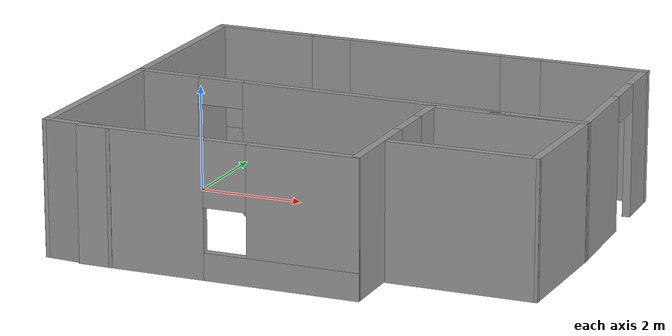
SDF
<?xml version='1.0'?>
<sdf version='1.6'>
  <model name='1B1B'>
    <pose frame=''>3.57695 -1.04782 0 0 -0 0</pose>
    <link name='Wall_10'>
      <collision name='Wall_10_Collision'>
        <geometry>
          <box>
            <size>2.96621 0.15 2.5</size>
          </box>
        </geometry>
        <pose frame=''>0 0 1.25 0 -0 0</pose>
      </collision>
      <visual name='Wall_10_Visual'>
        <pose frame=''>0 0 1.25 0 -0 0</pose>
        <geometry>
          <box>
            <size>2.96621 0.15 2.5</size>
          </box>
        </geometry>
        <material>
          <script>
            <uri>file://media/materials/scripts/gazebo.material</uri>
            <name>Gazebo/Grey</name>
          </script>
          <ambient>1 1 1 1</ambient>
        </material>
      </visual>
      <pose frame=''>2.92153 -0.237835 0 0 -0 0.009263</pose>
    </link>
    <link name='Wall_11'>
      <collision name='Wall_11_Collision'>
        <geometry>
          <box>
            <size>2.46754 0.15 2.5</size>
          </box>
        </geometry>
        <pose frame=''>0 0 1.25 0 -0 0</pose>
      </collision>
      <visual name='Wall_11_Visual'>
        <pose frame=''>0 0 1.25 0 -0 0</pose>
        <geometry>
          <box>
            <size>2.46754 0.15 2.5</size>
          </box>
        </geometry>
        <material>
          <script>
            <uri>file://media/materials/scripts/gazebo.material</uri>
            <name>Gazebo/Grey</name>
          </script>
          <ambient>1 1 1 1</ambient>
        </material>
      </visual>
      <pose frame=''>4.30349 -1.38349 0 0 0 -1.59331</pose>
    </link>
    <link name='Wall_14'>
      <pose frame=''>-1.03727 -3.64081 0 0 -0 0</pose>
      <visual name='Wall_14_Visual_0'>
        <pose frame=''>-1.43077 0 1.25 0 -0 0</pose>
        <geometry>
          <box>
            <size>2.38845 0.15 2.5</size>
          </box>
        </geometry>
        <material>
          <script>
            <uri>file://media/materials/scripts/gazebo.material</uri>
            <name>Gazebo/Grey</name>
          </script>
          <ambient>1 1 1 1</ambient>
        </material>
      </visual>
      <collision name='Wall_14_Collision_0'>
        <geometry>
          <box>
            <size>2.38845 0.15 2.5</size>
          </box>
        </geometry>
        <pose frame=''>-1.43077 0 1.25 0 -0 0</pose>
      </collision>
      <visual name='Wall_14_Visual_1'>
        <pose frame=''>1.19423 0 0.25 0 -0 0</pose>
        <geometry>
          <box>
            <size>2.86155 0.15 0.5</size>
          </box>
        </geometry>
        <material>
          <script>
            <uri>file://media/materials/scripts/gazebo.material</uri>
            <name>Gazebo/Grey</name>
          </script>
          <ambient>1 1 1 1</ambient>
        </material>
      </visual>
      <collision name='Wall_14_Collision_1'>
        <geometry>
          <box>
            <size>2.86155 0.15 0.5</size>
          </box>
        </geometry>
        <pose frame=''>1.19423 0 0.25 0 -0 0</pose>
      </collision>
      <visual name='Wall_14_Visual_2'>
        <pose frame=''>1.59423 0 1.5 0 -0 0</pose>
        <geometry>
          <box>
            <size>2.06155 0.15 2</size>
          </box>
        </geometry>
        <material>
          <script>
            <uri>file://media/materials/scripts/gazebo.material</uri>
            <name>Gazebo/Grey</name>
          </script>
          <ambient>1 1 1 1</ambient>
        </material>
      </visual>
      <collision name='Wall_14_Collision_2'>
        <geometry>
          <box>
            <size>2.06155 0.15 2</size>
          </box>
        </geometry>
        <pose frame=''>1.59423 0 1.5 0 -0 0</pose>
      </collision>
      <visual name='Wall_14_Visual_3'>
        <pose frame=''>0.163452 0 1.9 0 -0 0</pose>
        <geometry>
          <box>
            <size>0.8 0.15 1.2</size>
          </box>
        </geometry>
        <material>
          <script>
            <uri>file://media/materials/scripts/gazebo.material</uri>
            <name>Gazebo/Grey</name>
          </script>
          <ambient>1 1 1 1</ambient>
        </material>
      </visual>
      <collision name='Wall_14_Collision_3'>
        <geometry>
          <box>
            <size>0.8 0.15 1.2</size>
          </box>
        </geometry>
        <pose frame=''>0.163452 0 1.9 0 -0 0</pose>
      </collision>
    </link>
    <link name='Wall_16'>
      <collision name='Wall_16_Collision'>
        <geometry>
          <box>
            <size>2.75 0.15 2.5</size>
          </box>
        </geometry>
        <pose frame=''>0 0 1.25 0 -0 0</pose>
      </collision>
      <visual name='Wall_16_Visual'>
        <pose frame=''>0 0 1.25 0 -0 0</pose>
        <geometry>
          <box>
            <size>2.75 0.15 2.5</size>
          </box>
        </geometry>
        <material>
          <script>
            <uri>file://media/materials/scripts/gazebo.material</uri>
            <name>Gazebo/Grey</name>
          </script>
          <ambient>1 1 1 1</ambient>
        </material>
      </visual>
      <pose frame=''>2.9774 -2.54218 0 0 -0 3.14159</pose>
    </link>
    <link name='Wall_18'>
      <collision name='Wall_18_Collision'>
        <geometry>
          <box>
            <size>1.34723 0.15 2.5</size>
          </box>
        </geometry>
        <pose frame=''>0 0 1.25 0 -0 0</pose>
      </collision>
      <visual name='Wall_18_Visual'>
        <pose frame=''>0 0 1.25 0 -0 0</pose>
        <geometry>
          <box>
            <size>1.34723 0.15 2.5</size>
          </box>
        </geometry>
        <material>
          <script>
            <uri>file://media/materials/scripts/gazebo.material</uri>
            <name>Gazebo/Grey</name>
          </script>
          <ambient>1 1 1 1</ambient>
        </material>
      </visual>
      <pose frame=''>-3.68838 -3.59375 0 0 -0 3.06289</pose>
    </link>
    <link name='Wall_2'>
      <pose frame=''>0.009174 -0.085736 0 0 0 -0.03237</pose>
      <visual name='Wall_2_Visual_0'>
        <pose frame=''>-3.74047 0 1.25 0 -0 0</pose>
        <geometry>
          <box>
            <size>1.26219 0.15 2.5</size>
          </box>
        </geometry>
        <material>
          <script>
            <uri>file://media/materials/scripts/gazebo.material</uri>
            <name>Gazebo/Grey</name>
          </script>
          <ambient>1 1 1 1</ambient>
        </material>
      </visual>
      <collision name='Wall_2_Collision_0'>
        <geometry>
          <box>
            <size>1.26219 0.15 2.5</size>
          </box>
        </geometry>
        <pose frame=''>-3.74047 0 1.25 0 -0 0</pose>
      </collision>
      <visual name='Wall_2_Visual_1'>
        <pose frame=''>1.08109 0 1.25 0 -0 0</pose>
        <geometry>
          <box>
            <size>6.58094 0.15 2.5</size>
          </box>
        </geometry>
        <material>
          <script>
            <uri>file://media/materials/scripts/gazebo.material</uri>
            <name>Gazebo/Grey</name>
          </script>
          <ambient>1 1 1 1</ambient>
        </material>
      </visual>
      <collision name='Wall_2_Collision_1'>
        <geometry>
          <box>
            <size>6.58094 0.15 2.5</size>
          </box>
        </geometry>
        <pose frame=''>1.08109 0 1.25 0 -0 0</pose>
      </collision>
      <visual name='Wall_2_Visual_2'>
        <pose frame=''>-2.65937 0 2.25 0 -0 0</pose>
        <geometry>
          <box>
            <size>0.9 0.15 0.5</size>
          </box>
        </geometry>
        <material>
          <script>
            <uri>file://media/materials/scripts/gazebo.material</uri>
            <name>Gazebo/Grey</name>
          </script>
          <ambient>1 1 1 1</ambient>
        </material>
      </visual>
      <collision name='Wall_2_Collision_2'>
        <geometry>
          <box>
            <size>0.9 0.15 0.5</size>
          </box>
        </geometry>
        <pose frame=''>-2.65937 0 2.25 0 -0 0</pose>
      </collision>
    </link>
    <link name='Wall_3'>
      <pose frame=''>4.26918 1.58961 0 0 -0 1.60407</pose>
      <visual name='Wall_3_Visual_0'>
        <pose frame=''>-0.933363 0 1.25 0 -0 0</pose>
        <geometry>
          <box>
            <size>1.91409 0.15 2.5</size>
          </box>
        </geometry>
        <material>
          <script>
            <uri>file://media/materials/scripts/gazebo.material</uri>
            <name>Gazebo/Grey</name>
          </script>
          <ambient>1 1 1 1</ambient>
        </material>
      </visual>
      <collision name='Wall_3_Collision_0'>
        <geometry>
          <box>
            <size>1.91409 0.15 2.5</size>
          </box>
        </geometry>
        <pose frame=''>-0.933363 0 1.25 0 -0 0</pose>
      </collision>
      <visual name='Wall_3_Visual_1'>
        <pose frame=''>1.40705 0 1.25 0 -0 0</pose>
        <geometry>
          <box>
            <size>0.966725 0.15 2.5</size>
          </box>
        </geometry>
        <material>
          <script>
            <uri>file://media/materials/scripts/gazebo.material</uri>
            <name>Gazebo/Grey</name>
          </script>
          <ambient>1 1 1 1</ambient>
        </material>
      </visual>
      <collision name='Wall_3_Collision_1'>
        <geometry>
          <box>
            <size>0.966725 0.15 2.5</size>
          </box>
        </geometry>
        <pose frame=''>1.40705 0 1.25 0 -0 0</pose>
      </collision>
      <visual name='Wall_3_Visual_2'>
        <pose frame=''>0.473683 0 2.25 0 -0 0</pose>
        <geometry>
          <box>
            <size>0.9 0.15 0.5</size>
          </box>
        </geometry>
        <material>
          <script>
            <uri>file://media/materials/scripts/gazebo.material</uri>
            <name>Gazebo/Grey</name>
          </script>
          <ambient>1 1 1 1</ambient>
        </material>
      </visual>
      <collision name='Wall_3_Collision_2'>
        <geometry>
          <box>
            <size>0.9 0.15 0.5</size>
          </box>
        </geometry>
        <pose frame=''>0.473683 0 2.25 0 -0 0</pose>
      </collision>
    </link>
    <link name='Wall_4'>
      <pose frame=''>-0.060961 3.56959 0 0 -0 3.1239</pose>
      <visual name='Wall_4_Visual_0'>
        <pose frame=''>-3.31609 0 1.25 0 -0 0</pose>
        <geometry>
          <box>
            <size>2.05866 0.15 2.5</size>
          </box>
        </geometry>
        <material>
          <script>
            <uri>file://media/materials/scripts/gazebo.material</uri>
            <name>Gazebo/Grey</name>
          </script>
          <ambient>1 1 1 1</ambient>
        </material>
      </visual>
      <collision name='Wall_4_Collision_0'>
        <geometry>
          <box>
            <size>2.05866 0.15 2.5</size>
          </box>
        </geometry>
        <pose frame=''>-3.31609 0 1.25 0 -0 0</pose>
      </collision>
      <visual name='Wall_4_Visual_1'>
        <pose frame=''>1.02933 0 0.25 0 -0 0</pose>
        <geometry>
          <box>
            <size>6.63218 0.15 0.5</size>
          </box>
        </geometry>
        <material>
          <script>
            <uri>file://media/materials/scripts/gazebo.material</uri>
            <name>Gazebo/Grey</name>
          </script>
          <ambient>1 1 1 1</ambient>
        </material>
      </visual>
      <collision name='Wall_4_Collision_1'>
        <geometry>
          <box>
            <size>6.63218 0.15 0.5</size>
          </box>
        </geometry>
        <pose frame=''>1.02933 0 0.25 0 -0 0</pose>
      </collision>
      <visual name='Wall_4_Visual_2'>
        <pose frame=''>0.034265 0 1.5 0 -0 0</pose>
        <geometry>
          <box>
            <size>3.04205 0.15 2</size>
          </box>
        </geometry>
        <material>
          <script>
            <uri>file://media/materials/scripts/gazebo.material</uri>
            <name>Gazebo/Grey</name>
          </script>
          <ambient>1 1 1 1</ambient>
        </material>
      </visual>
      <collision name='Wall_4_Collision_2'>
        <geometry>
          <box>
            <size>3.04205 0.15 2</size>
          </box>
        </geometry>
        <pose frame=''>0.034265 0 1.5 0 -0 0</pose>
      </collision>
      <visual name='Wall_4_Visual_3'>
        <pose frame=''>3.35035 0 1.5 0 -0 0</pose>
        <geometry>
          <box>
            <size>1.99013 0.15 2</size>
          </box>
        </geometry>
        <material>
          <script>
            <uri>file://media/materials/scripts/gazebo.material</uri>
            <name>Gazebo/Grey</name>
          </script>
          <ambient>1 1 1 1</ambient>
        </material>
      </visual>
      <collision name='Wall_4_Collision_3'>
        <geometry>
          <box>
            <size>1.99013 0.15 2</size>
          </box>
        </geometry>
        <pose frame=''>3.35035 0 1.5 0 -0 0</pose>
      </collision>
      <visual name='Wall_4_Visual_4'>
        <pose frame=''>-1.88676 0 1.9 0 -0 0</pose>
        <geometry>
          <box>
            <size>0.8 0.15 1.2</size>
          </box>
        </geometry>
        <material>
          <script>
            <uri>file://media/materials/scripts/gazebo.material</uri>
            <name>Gazebo/Grey</name>
          </script>
          <ambient>1 1 1 1</ambient>
        </material>
      </visual>
      <collision name='Wall_4_Collision_4'>
        <geometry>
          <box>
            <size>0.8 0.15 1.2</size>
          </box>
        </geometry>
        <pose frame=''>-1.88676 0 1.9 0 -0 0</pose>
      </collision>
      <visual name='Wall_4_Visual_5'>
        <pose frame=''>1.95529 0 1.9 0 -0 0</pose>
        <geometry>
          <box>
            <size>0.8 0.15 1.2</size>
          </box>
        </geometry>
        <material>
          <script>
            <uri>file://media/materials/scripts/gazebo.material</uri>
            <name>Gazebo/Grey</name>
          </script>
          <ambient>1 1 1 1</ambient>
        </material>
      </visual>
      <collision name='Wall_4_Collision_5'>
        <geometry>
          <box>
            <size>0.8 0.15 1.2</size>
          </box>
        </geometry>
        <pose frame=''>1.95529 0 1.9 0 -0 0</pose>
      </collision>
    </link>
    <link name='Wall_5'>
      <collision name='Wall_5_Collision'>
        <geometry>
          <box>
            <size>3.65214 0.15 2.5</size>
          </box>
        </geometry>
        <pose frame=''>0 0 1.25 0 -0 0</pose>
      </collision>
      <visual name='Wall_5_Visual'>
        <pose frame=''>0 0 1.25 0 -0 0</pose>
        <geometry>
          <box>
            <size>3.65214 0.15 2.5</size>
          </box>
        </geometry>
        <material>
          <script>
            <uri>file://media/materials/scripts/gazebo.material</uri>
            <name>Gazebo/Grey</name>
          </script>
          <ambient>1 1 1 1</ambient>
        </material>
      </visual>
      <pose frame=''>-4.30792 1.80424 0 0 0 -1.55778</pose>
    </link>
    <link name='Wall_6'>
      <collision name='Wall_6_Collision'>
        <geometry>
          <box>
            <size>3.75 0.15 2.5</size>
          </box>
        </geometry>
        <pose frame=''>0 0 1.25 0 -0 0</pose>
      </collision>
      <visual name='Wall_6_Visual'>
        <pose frame=''>0 0 1.25 0 -0 0</pose>
        <geometry>
          <box>
            <size>3.75 0.15 2.5</size>
          </box>
        </geometry>
        <material>
          <script>
            <uri>file://media/materials/scripts/gazebo.material</uri>
            <name>Gazebo/Grey</name>
          </script>
          <ambient>1 1 1 1</ambient>
        </material>
      </visual>
      <pose frame=''>-4.28514 -1.74668 0 0 0 -1.5708</pose>
    </link>
    <link name='Wall_9'>
      <pose frame=''>1.51348 -1.92588 0 0 -0 1.5708</pose>
      <visual name='Wall_9_Visual_0'>
        <pose frame=''>-0.822685 0 1.25 0 -0 0</pose>
        <geometry>
          <box>
            <size>1.85463 0.15 2.5</size>
          </box>
        </geometry>
        <material>
          <script>
            <uri>file://media/materials/scripts/gazebo.material</uri>
            <name>Gazebo/Grey</name>
          </script>
          <ambient>1 1 1 1</ambient>
        </material>
      </visual>
      <collision name='Wall_9_Collision_0'>
        <geometry>
          <box>
            <size>1.85463 0.15 2.5</size>
          </box>
        </geometry>
        <pose frame=''>-0.822685 0 1.25 0 -0 0</pose>
      </collision>
      <visual name='Wall_9_Visual_1'>
        <pose frame=''>1.37732 0 1.25 0 -0 0</pose>
        <geometry>
          <box>
            <size>0.74537 0.15 2.5</size>
          </box>
        </geometry>
        <material>
          <script>
            <uri>file://media/materials/scripts/gazebo.material</uri>
            <name>Gazebo/Grey</name>
          </script>
          <ambient>1 1 1 1</ambient>
        </material>
      </visual>
      <collision name='Wall_9_Collision_1'>
        <geometry>
          <box>
            <size>0.74537 0.15 2.5</size>
          </box>
        </geometry>
        <pose frame=''>1.37732 0 1.25 0 -0 0</pose>
      </collision>
      <visual name='Wall_9_Visual_2'>
        <pose frame=''>0.55463 0 2.25 0 -0 0</pose>
        <geometry>
          <box>
            <size>0.9 0.15 0.5</size>
          </box>
        </geometry>
        <material>
          <script>
            <uri>file://media/materials/scripts/gazebo.material</uri>
            <name>Gazebo/Grey</name>
          </script>
          <ambient>1 1 1 1</ambient>
        </material>
      </visual>
      <collision name='Wall_9_Collision_2'>
        <geometry>
          <box>
            <size>0.9 0.15 0.5</size>
          </box>
        </geometry>
        <pose frame=''>0.55463 0 2.25 0 -0 0</pose>
      </collision>
    </link>
    <static>1</static>
  </model>
</sdf>
